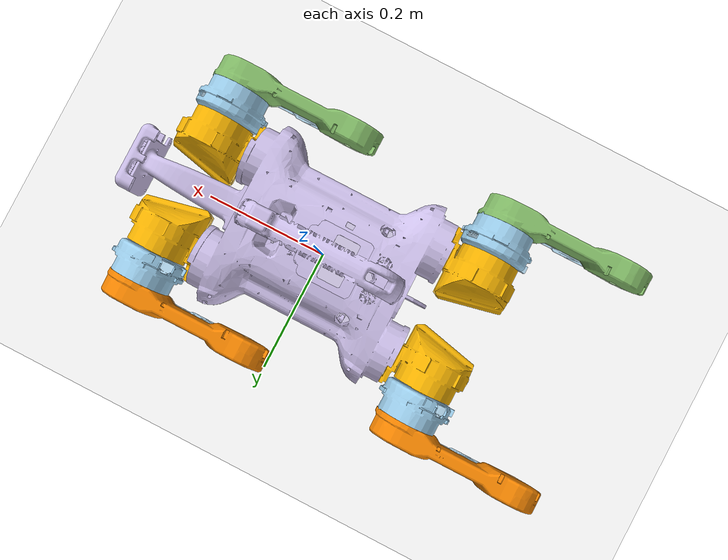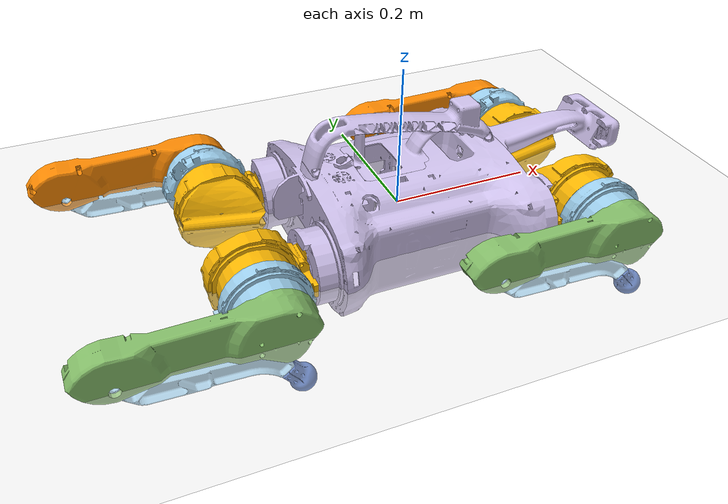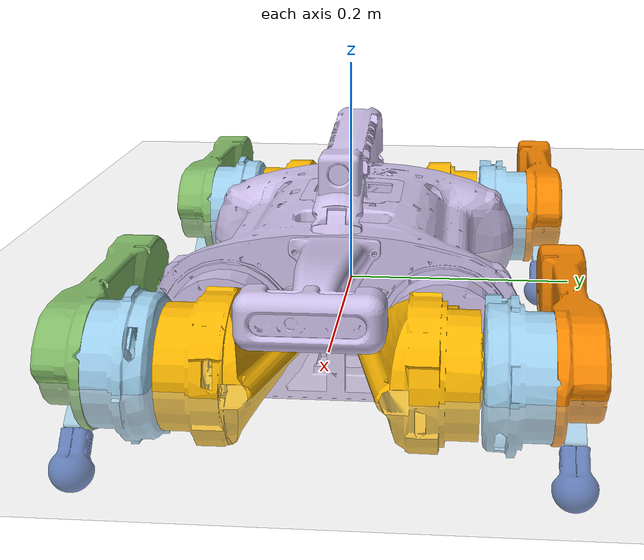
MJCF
<mujoco model="barkour_vb">
  <compiler angle="radian" autolimits="true"/>

  <option cone="pyramidal" impratio="100" timestep="0.005"/>

  <default>
    <geom type="mesh" solref="-1000 -80"/>
    <motor ctrllimited="true" ctrlrange="-12.0 12.0"/>
    <default class="bkvb">
      <geom type="mesh"/>
      <joint damping="0.024" frictionloss="0.13" armature="0.011"/>
      <default class="abduction">
        <geom rgba="0.980392 0.713726 0.00392157 1" mesh="abduction"/>
      </default>
      <default class="foot">
        <geom rgba="0.231373 0.380392 0.705882 1" mesh="foot" solimp="0.015 1 0.031" friction="0.8 0.02 0.01"/>
      </default>
      <default class="lower_leg">
        <geom rgba="0.615686 0.811765 0.929412 1" mesh="lower_leg"/>
      </default>
      <default class="upper_leg">
        <geom rgba="0.615686 0.811765 0.929412 1" mesh="upper_leg"/>
      </default>
      <default class="upper_leg_left">
        <geom rgba="0.972549 0.529412 0.00392157 1" mesh="upper_leg_left"/>
      </default>
      <default class="upper_leg_right">
        <geom rgba="0.513726 0.737255 0.407843 1" mesh="upper_leg_right"/>
      </default>
      <default class="torso">
        <geom rgba="0.8 0.74902 0.913725 1"/>
      </default>
    </default>
  </default>

  <asset>
    <texture type="skybox" builtin="gradient" rgb1=".3 .5 .7" rgb2="0 0 0" width="32" height="512"/>

    <texture name="texplane" type="2d" builtin="checker" rgb1="0.5 0.6 0.7" rgb2="0.2 0.3 0.4" width="100" height="100"/>
    <material name="MatPlane" reflectance="0.5" texture="texplane" texrepeat="1 1" texuniform="true"></material>

    <texture name="grid" type="2d" builtin="checker" rgb1="0.5 0.6 0.7" rgb2="0.2 0.3 0.4" width="512" height="512"/>
    <material name="grid" reflectance="0.5" texture="grid" texrepeat="1 1" texuniform="true"></material>

    <mesh name="camera_cover" file="assets/camera_cover.stl"/>
    <mesh name="neck" file="assets/neck.stl"/>
    <mesh name="intel_realsense_depth_camera_d435" file="assets/intel_realsense_depth_camera_d435.stl"/>
    <mesh name="handle" file="assets/handle.stl"/>
    <mesh name="torso" file="assets/torso.stl"/>
    <mesh name="abduction" file="assets/abduction.stl"/>
    <mesh name="upper_leg" file="assets/upper_leg.stl"/>
    <mesh name="upper_leg_left" file="assets/upper_leg_left.stl"/>
    <mesh name="upper_leg_right" file="assets/upper_leg_right.stl"/>
    <mesh name="lower_leg" file="assets/lower_leg.stl"/>
    <mesh name="foot" file="assets/foot.stl"/>
  </asset>

  <worldbody>
    <geom name="floor" size="0 0 .125" type="plane" material="grid" condim="3" rgba="0.9 0.9 0.9 1"/>

    <light cutoff="100" diffuse="1 1 1" dir="-0 0 -1.3" directional="true" exponent="1" pos="0 0 1.3" specular=".1 .1 .1" castshadow="false"/>
    <light name="spotlight" mode="targetbodycom" target="trunk" pos="0 0 15"/>

    <body name="trunk" childclass="bkvb">
      <camera name="track" mode="trackcom" pos="0 -2 0" xyaxes="1 0 0 0 0 1"/>

      <freejoint/>

      <inertial pos="0.0055238 -0.000354563 0.00835899" quat="-0.00150849 0.694899 -0.000198355 0.719106" mass="6.04352"
        diaginertia="0.144664 0.12027 0.0511405"/>

      <geom class="torso" pos="-7.85127e-05 -0.000500734 0" mesh="neck"/>
      <geom class="torso" pos="-7.85127e-05 -0.000500734 0" mesh="camera_cover" name="trunk_1"/>
      <geom class="torso" pos="-7.85127e-05 -0.000500734 0" mesh="handle" name="trunk_2"/>
      <geom class="torso" pos="0.319921 -0.000500734 0.0651248" quat="1 0 0 1" mesh="intel_realsense_depth_camera_d435"/>
      <geom class="torso" pos="-7.85127e-05 -0.000500734 0" mesh="torso" name="trunk_3"/>

      <body name="leg_front_left" pos="0.171671 0.0892493 -9.8e-06" quat="1 -1 -1 1">
        <inertial pos="0.00547726 -0.000288034 -0.0602191" quat="0.999837 0.0103892 -0.0143715 -0.00325656" mass="0.787"
          diaginertia="0.00143831 0.00117023 0.00100011"/>
        <joint name="abduction_front_left" axis="0 0 -1" range="-1.0472 1.0472"/>
        <geom class="abduction" pos="0 0.000111373 0.0029" quat="1 1 0 0"/>
        <body name="upper_leg_front_left" pos="0.03085 0 -0.065" quat="0 -1 0 1">
          <inertial pos="-0.0241397 0.00402429 -0.0453038" quat="0.0673193 0.647966 -0.00518142 0.75867" mass="1.155"
            diaginertia="0.00562022 0.00519471 0.0012633"/>
          <joint name="hip_front_left" axis="0 0 -1" range="-3.02902 1.54706"/>
          <geom class="upper_leg" pos="0.0679 0.000111373 0.03085" quat="1 1 1 -1"/>
          <geom class="upper_leg_left" pos="0 0 -0.05075" quat="0 0 1 0" name="FL_thigh"/>
          <body name="lower_leg_front_left" pos="-0.19 0 -0.069575" quat="0 0 1 0">
            <inertial pos="-0.0895493 -0.0301957 -3.02082e-08" quat="-0.101465 0.699789 0.101465 0.699789"
              mass="0.171238" diaginertia="0.00137406 0.00135746 3.05521e-05"/>
            <joint name="knee_front_left" range="0 2.44346"/>
            <geom class="foot" pos="-0.0649838 0.178542 0" quat="0.819152 0 0 -0.573576" name="FL_foot"/>
            <geom class="lower_leg" pos="-0.0649838 0.178542 0" quat="0.819152 0 0 -0.573576" name="FL_calf"/>
          </body>
        </body>
      </body>
      <body name="leg_hind_left" pos="-0.171829 0.0892493 -9.8e-06" quat="1 -1 -1 1">
        <inertial pos="0.00547726 0.000288034 0.0602191" quat="0.999837 0.0103892 0.0143715 0.00325656" mass="0.787"
          diaginertia="0.00143831 0.00117023 0.00100011"/>
        <joint name="abduction_hind_left" range="-1.0472 1.0472"/>
        <geom class="abduction" pos="0 -0.000111373 -0.0029" quat="1 -1 0 0"/>
        <body name="upper_leg_hind_left" pos="0.03085 0 0.065" quat="0 1 0 -1">
          <inertial pos="-0.0241397 0.00402429 -0.0453038" quat="0.0673193 0.647966 -0.00518142 0.75867" mass="1.155"
            diaginertia="0.00562022 0.00519471 0.0012633"/>
          <joint name="hip_hind_left" axis="0 0 -1" range="-3.02902 1.54706"/>
          <geom class="upper_leg" pos="0.0679 0.000111373 0.03085" quat="1 1 1 -1"/>
          <geom class="upper_leg_left" pos="0 0 -0.05075" quat="0 0 1 0" name="RL_thigh"/>
          <body name="lower_leg_2" pos="-0.19 0 -0.069925" quat="0 0 1 0">
            <inertial pos="-0.0895493 -0.0301957 -3.02082e-08" quat="-0.101465 0.699789 0.101465 0.699789"
              mass="0.171238" diaginertia="0.00137406 0.00135746 3.05521e-05"/>
            <joint name="knee_hind_left" range="0 2.44346"/>
            <geom class="lower_leg" pos="-0.0649838 0.178542 0" quat="0.819152 0 0 -0.573576" name="RL_calf"/>
            <geom class="foot" pos="-0.0649838 0.178542 0" quat="0.819152 0 0 -0.573576" name="RL_foot"/>
          </body>
        </body>
      </body>
      <body name="leg_front_right" pos="0.171671 -0.0907507 -9.8e-06" quat="1 -1 1 -1">
        <inertial pos="0.00547726 0.000288034 0.0602191" quat="0.999837 0.0103892 0.0143715 0.00325656" mass="0.787"
          diaginertia="0.00143831 0.00117023 0.00100011"/>
        <joint name="abduction_front_right" range="-1.0472 1.0472"/>
        <geom class="abduction" pos="0 -0.000111373 -0.0029" quat="1 -1 0 0"/>
        <body name="upper_leg_front_right" pos="0.03085 0 0.065" quat="0 -1 0 -1">
          <inertial pos="-0.0241393 0.00324567 0.0453036" quat="-0.00604983 0.756969 -0.0854547 0.64781" mass="1.155"
            diaginertia="0.00563107 0.00519539 0.00126472"/>
          <joint name="hip_front_right" range="-1.54706 3.02902"/>
          <geom class="upper_leg" pos="0.0679 -0.000111373 -0.03085" quat="1 -1 -1 -1"/>
          <geom class="upper_leg_right" pos="0 0 0.05075" quat="0 0 -1 0" name="FR_thigh"/>
          <body name="lower_leg_3" pos="-0.19 0 0.069575" quat="0 0 -1 0">
            <inertial pos="-0.0895493 -0.0301957 -3.02082e-08" quat="-0.101465 0.699789 0.101465 0.699789"
              mass="0.171238" diaginertia="0.00137406 0.00135746 3.05521e-05"/>
            <joint name="knee_front_right" axis="0 0 -1" range="-2.44346 0"/>
            <geom class="foot" pos="-0.0649838 0.178542 0" quat="0.819152 0 0 -0.573576" name="FR_foot"/>
            <geom class="lower_leg" pos="-0.0649838 0.178542 0" quat="0.819152 0 0 -0.573576" name="FR_calf"/>
          </body>
        </body>
      </body>
      <body name="leg_hind_right" pos="-0.171829 -0.0907507 -9.8e-06" quat="1 -1 1 -1">
        <inertial pos="0.00547726 -0.000288034 -0.0600191" quat="0.999837 0.0103892 -0.0143715 -0.00325656" mass="0.787"
          diaginertia="0.00143831 0.00117023 0.00100011"/>
        <joint name="abduction_hind_right" axis="0 0 -1" range="-1.0472 1.0472"/>
        <geom class="abduction" pos="0 0.000111373 0.0031" quat="1 1 0 0"/>
        <body name="upper_leg_hind_right" pos="0.03085 0 -0.0648" quat="0 1 0 1">
          <inertial pos="-0.0241393 0.00324567 0.0453036" quat="-0.00604983 0.756969 -0.0854547 0.64781" mass="1.155"
            diaginertia="0.00563107 0.00519539 0.00126472"/>
          <joint name="hip_hind_right" range="-1.54706 3.02902"/>
          <geom class="upper_leg" pos="0.0679 -0.000111373 -0.03085" quat="1 -1 -1 -1"/>
          <geom class="upper_leg_right" pos="0 0 0.05075" quat="0 0 -1 0" name="RR_thigh"/>
          <body name="lower_leg_4" pos="-0.19 0 0.069575" quat="0 0 -1 0">
            <inertial pos="-0.0895493 -0.0301957 -3.02082e-08" quat="-0.101465 0.699789 0.101465 0.699789"
              mass="0.171238" diaginertia="0.00137406 0.00135746 3.05521e-05"/>
            <joint name="knee_hind_right" axis="0 0 -1" range="-2.44346 0"/>
            <geom class="lower_leg" pos="-0.0649838 0.178542 0" quat="0.819152 0 0 -0.573576" name="RR_calf"/>
            <geom class="foot" pos="-0.0649838 0.178542 0" quat="0.819152 0 0 -0.573576" name="RR_foot"/>
          </body>
        </body>
      </body>
    </body>
  </worldbody>

  <actuator>
    <motor name="abduction_front_left" joint="abduction_front_left"/>
    <motor name="hip_front_left" joint="hip_front_left"/>
    <motor name="knee_front_left" joint="knee_front_left"/>
    <motor name="abduction_hind_left" joint="abduction_hind_left"/>
    <motor name="hip_hind_left" joint="hip_hind_left"/>
    <motor name="knee_hind_left" joint="knee_hind_left"/>
    <motor name="abduction_front_right" joint="abduction_front_right"/>
    <motor name="hip_front_right" joint="hip_front_right"/>
    <motor name="knee_front_right" joint="knee_front_right"/>
    <motor name="abduction_hind_right" joint="abduction_hind_right"/>
    <motor name="hip_hind_right" joint="hip_hind_right"/>
    <motor name="knee_hind_right" joint="knee_hind_right"/>
  </actuator>

  <keyframe>
    <key name="home" qpos="0 0 0.34 1 0 0 0 0.1 -0.8 1.5 -0.1 -1.0 1.5 -0.1 0.8 -1.5 0.1 1.0 -1.5"/>
  </keyframe>
</mujoco>
